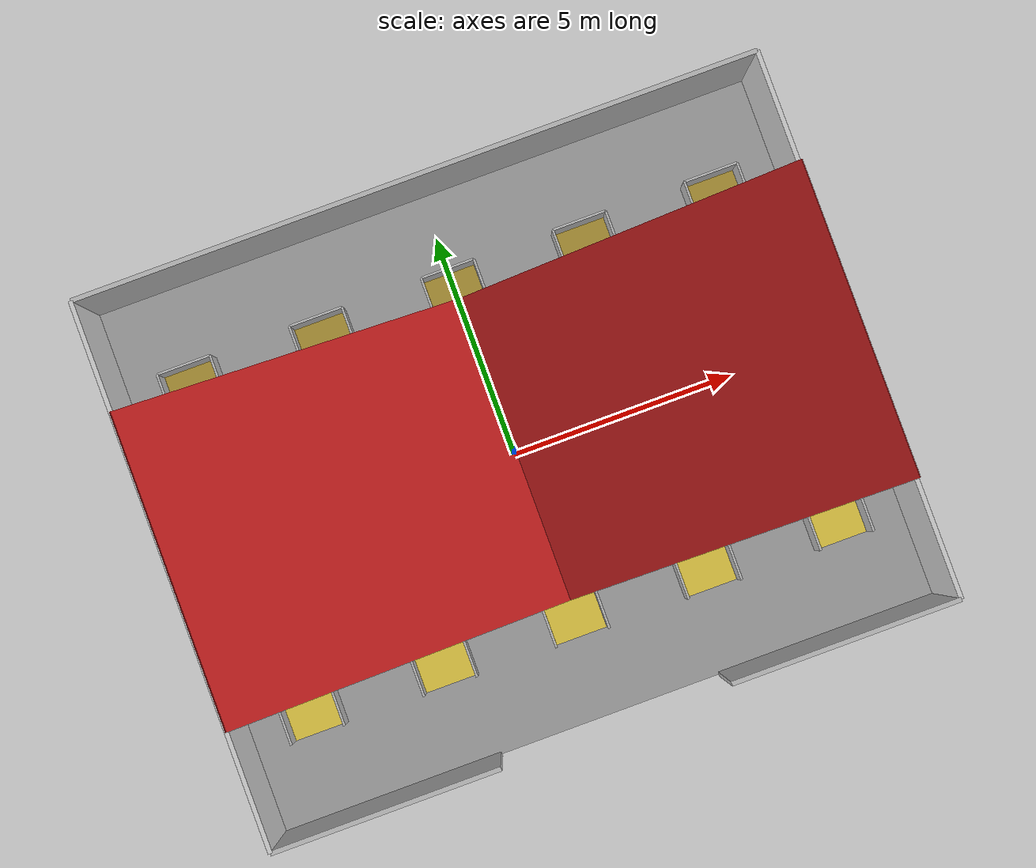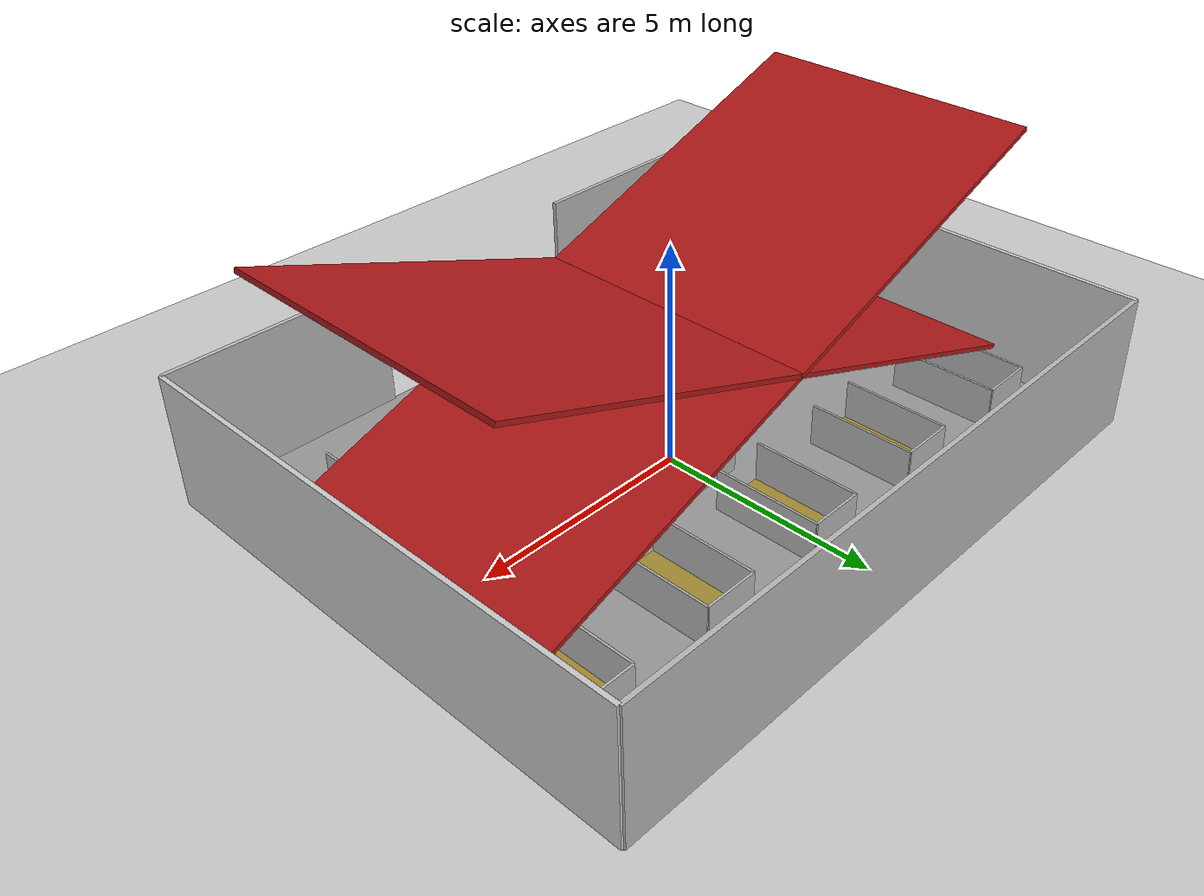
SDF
<?xml version="1.0"?>
<sdf version="1.9">
  <world name="cow_barn_world">

    <!-- Physics -->
    <physics name="default" type="dart">
      <max_step_size>0.001</max_step_size>
      <real_time_update_rate>1000</real_time_update_rate>
    </physics>

    <!-- Required so the 3D view can see the scene -->
    <plugin filename="gz-sim-scene-broadcaster-system"
            name="gz::sim::systems::SceneBroadcaster"/>

    <!-- GUI: keep the usual handy panels visible -->
    <gui fullscreen="0">
      <!-- 3D view -->
      <plugin filename="MinimalScene" name="3D View"/>
      <!-- Play / pause / step -->
      <plugin filename="WorldControl" name="World control"/>
      <!-- Sim time, real time factor, iterations -->
      <plugin filename="WorldStats" name="World stats"/>
      <!-- Hierarchy tree to inspect entities -->
      <plugin filename="EntityTree" name="Entity tree"/>
      <!-- Optional: interactive view control (orbit, FPS, etc.) -->
      <plugin filename="InteractiveViewControl" name="Interactive view control"/>
    </gui>

    <!-- Ambient + background so it’s not too dark indoors -->
    <scene>
      <ambient>0.5 0.5 0.5 1.0</ambient>
      <background>0.75 0.85 1.0 1.0</background>
    </scene>

    <!-- Sun + Ground plane from Fuel so we don’t reinvent wheels -->
    <include>
      <uri>https://fuel.gazebosim.org/1.0/OpenRobotics/models/Sun</uri>
    </include>
    <include>
      <uri>https://fuel.gazebosim.org/1.0/OpenRobotics/models/Ground Plane</uri>
      <!-- Sink the ground slightly so the barn floor sits on top -->
      <pose>0 0 -0.05 0 0 0</pose>
    </include>

    <!-- =========================
         Barn model (very simple)
         ========================= -->
    <model name="barn">
      <static>true</static>

      <!-- Barn floor: 15m x 12m concrete slab -->
      <link name="floor">
        <pose>0 0 0 0 0 0</pose>
        <collision name="floor_coll">
          <geometry>
            <box><size>15 12 0.1</size></box>
          </geometry>
          <surface>
            <friction>
              <ode>
                <mu>1.0</mu>
                <mu2>1.0</mu2>
              </ode>
            </friction>
          </surface>
        </collision>
        <visual name="floor_vis">
          <geometry>
            <box><size>15 12 0.1</size></box>
          </geometry>
          <material>
            <ambient>0.6 0.6 0.6 1</ambient>
            <diffuse>0.6 0.6 0.6 1</diffuse>
          </material>
        </visual>
      </link>

      <!-- Four simple walls (open ends for ventilation) -->
      <!-- West wall -->
      <link name="wall_w">
        <pose>-7.5 0 1.5 0 0 0</pose>
        <collision name="c">
          <geometry><box><size>0.1 12 3</size></box></geometry>
        </collision>
        <visual name="v">
          <geometry><box><size>0.1 12 3</size></box></geometry>
          <material><ambient>0.8 0.8 0.8 1</ambient></material>
        </visual>
      </link>
      <!-- East wall -->
      <link name="wall_e">
        <pose>7.5 0 1.5 0 0 0</pose>
        <collision name="c">
          <geometry><box><size>0.1 12 3</size></box></geometry>
        </collision>
        <visual name="v">
          <geometry><box><size>0.1 12 3</size></box></geometry>
          <material><ambient>0.8 0.8 0.8 1</ambient></material>
        </visual>
      </link>
      <!-- South wall with a large doorway gap (~5m) -->
      <model name="south_wall">
        <static>true</static>
        <!-- Left segment -->
        <link name="sw_left">
          <pose>-5  -6 1.5 0 0 0</pose>
          <collision name="c">
            <geometry><box><size>5 0.1 3</size></box></geometry>
          </collision>
          <visual name="v">
            <geometry><box><size>5 0.1 3</size></box></geometry>
          </visual>
        </link>
        <!-- Right segment -->
        <link name="sw_right">
          <pose> 5  -6 1.5 0 0 0</pose>
          <collision name="c">
            <geometry><box><size>5 0.1 3</size></box></geometry>
          </collision>
          <visual name="v">
            <geometry><box><size>5 0.1 3</size></box></geometry>
          </visual>
        </link>
      </model>
      <!-- North wall solid -->
      <link name="wall_n">
        <pose>0 6 1.5 0 0 0</pose>
        <collision name="c">
          <geometry><box><size>15 0.1 3</size></box></geometry>
        </collision>
        <visual name="v">
          <geometry><box><size>15 0.1 3</size></box></geometry>
        </visual>
      </link>

      <!-- Simple gable roof (two thin plates) -->
      <link name="roof_w">
        <pose>0 0 3.5 0 0.35 0</pose>
        <collision name="c">
          <geometry><box><size>15 6.5 0.1</size></box></geometry>
        </collision>
        <visual name="v">
          <geometry><box><size>15 6.5 0.1</size></box></geometry>
          <material><ambient>0.7 0.1 0.1 1</ambient></material>
        </visual>
      </link>
      <link name="roof_e">
        <pose>0 0 3.5 0 -0.35 0</pose>
        <collision name="c">
          <geometry><box><size>15 6.5 0.1</size></box></geometry>
        </collision>
        <visual name="v">
          <geometry><box><size>15 6.5 0.1</size></box></geometry>
          <material><ambient>0.7 0.1 0.1 1</ambient></material>
        </visual>
      </link>
    </model>

    <!-- =========================================
         A reusable cubicle "module"
         size ~ 1.2m x 2.4m, with side rails and bedding
         ========================================= -->
    <!-- Dry hay material (yellowish) -->
    <light name="indoor_fill" type="point">
      <pose>0 0 3.2 0 0 0</pose>
      <diffuse>0.9 0.9 0.9 1</diffuse>
      <attenuation>
        <range>20</range>
        <constant>0.9</constant>
        <linear>0.01</linear>
        <quadratic>0.001</quadratic>
      </attenuation>
    </light>

    <!-- Helper: one dry cubicle at a given pose -->
    <model name="cubicle_template_dry">
      <static>true</static>
      <pose>0 0 0 0 0 0</pose>

      <!-- bedding pad -->
      <link name="bedding">
        <pose>0 0 0.06 0 0 0</pose>
        <collision name="coll">
          <geometry><box><size>1.2 2.4 0.12</size></box></geometry>
          <surface>
            <friction>
              <ode>
                <!-- illustrative friction; tune for your use -->
                <mu>0.8</mu>
                <mu2>0.8</mu2>
              </ode>
            </friction>
          </surface>
        </collision>
        <visual name="vis">
          <geometry><box><size>1.2 2.4 0.12</size></box></geometry>
          <material>
            <ambient>0.85 0.75 0.25 1</ambient>
            <diffuse>0.85 0.75 0.25 1</diffuse>
          </material>
        </visual>
      </link>

      <!-- side rails -->
      <link name="rail_left">
        <pose>-0.6 0 0.5 0 0 0</pose>
        <collision name="c">
          <geometry><box><size>0.05 2.4 1.0</size></box></geometry>
        </collision>
        <visual name="v">
          <geometry><box><size>0.05 2.4 1.0</size></box></geometry>
        </visual>
      </link>
      <link name="rail_right">
        <pose>0.6 0 0.5 0 0 0</pose>
        <collision name="c">
          <geometry><box><size>0.05 2.4 1.0</size></box></geometry>
        </collision>
        <visual name="v">
          <geometry><box><size>0.05 2.4 1.0</size></box></geometry>
        </visual>
      </link>
      <!-- headboard -->
      <link name="rail_head">
        <pose>0 1.2 0.5 0 0 0</pose>
        <collision name="c">
          <geometry><box><size>1.2 0.05 1.0</size></box></geometry>
        </collision>
        <visual name="v">
          <geometry><box><size>1.2 0.05 1.0</size></box></geometry>
        </visual>
      </link>
    </model>

    <!-- Moist hay variant (slightly darker and (illustratively) different friction) -->
    <model name="cubicle_template_moist">
      <static>true</static>
      <pose>0 0 0 0 0 0</pose>

      <link name="bedding">
        <pose>0 0 0.06 0 0 0</pose>
        <collision name="coll">
          <geometry><box><size>1.2 2.4 0.12</size></box></geometry>
          <surface>
            <friction>
              <ode>
                <!-- illustrative friction; tune as needed -->
                <mu>0.9</mu>
                <mu2>0.9</mu2>
              </ode>
            </friction>
          </surface>
        </collision>
        <visual name="vis">
          <geometry><box><size>1.2 2.4 0.12</size></box></geometry>
          <material>
            <ambient>0.65 0.55 0.20 1</ambient>
            <diffuse>0.65 0.55 0.20 1</diffuse>
          </material>
        </visual>
      </link>

      <!-- reuse same rail geometry -->
      <link name="rail_left">
        <pose>-0.6 0 0.5 0 0 0</pose>
        <collision name="c">
          <geometry><box><size>0.05 2.4 1.0</size></box></geometry>
        </collision>
        <visual name="v">
          <geometry><box><size>0.05 2.4 1.0</size></box></geometry>
        </visual>
      </link>
      <link name="rail_right">
        <pose>0.6 0 0.5 0 0 0</pose>
        <collision name="c">
          <geometry><box><size>0.05 2.4 1.0</size></box></geometry>
        </collision>
        <visual name="v">
          <geometry><box><size>0.05 2.4 1.0</size></box></geometry>
        </visual>
      </link>
      <link name="rail_head">
        <pose>0 1.2 0.5 0 0 0</pose>
        <collision name="c">
          <geometry><box><size>1.2 0.05 1.0</size></box></geometry>
        </collision>
        <visual name="v">
          <geometry><box><size>1.2 0.05 1.0</size></box></geometry>
        </visual>
      </link>
    </model>

    <!-- =========================
         Place 10 cubicles:
         Left row (Y=-3): 5 x DRY (CLEAN)
         Right row (Y=+3): 5 x MOIST (DIRTY)
         ========================= -->
    <!-- Left row: X = -6, -3, 0, 3, 6 -->
    <model name="cubicle_dry_1"><static>true</static><pose>-6 -3 0 0 0 0</pose>  <!-- copy of template -->
      <link name="bedding"><pose>0 0 0.06 0 0 0</pose><collision name="c"><geometry><box><size>1.2 2.4 0.12</size></box></geometry><surface><friction><ode><mu>0.8</mu><mu2>0.8</mu2></ode></friction></surface></collision><visual name="v"><geometry><box><size>1.2 2.4 0.12</size></box></geometry><material><ambient>0.85 0.75 0.25 1</ambient><diffuse>0.85 0.75 0.25 1</diffuse></material></visual></link>
      <link name="rail_left"><pose>-0.6 0 0.5 0 0 0</pose><collision name="c"><geometry><box><size>0.05 2.4 1.0</size></box></geometry></collision><visual name="v"><geometry><box><size>0.05 2.4 1.0</size></box></geometry></visual></link>
      <link name="rail_right"><pose>0.6 0 0.5 0 0 0</pose><collision name="c"><geometry><box><size>0.05 2.4 1.0</size></box></geometry></collision><visual name="v"><geometry><box><size>0.05 2.4 1.0</size></box></geometry></visual></link>
      <link name="rail_head"><pose>0 1.2 0.5 0 0 0</pose><collision name="c"><geometry><box><size>1.2 0.05 1.0</size></box></geometry></collision><visual name="v"><geometry><box><size>1.2 0.05 1.0</size></box></geometry></visual></link>
    </model>
    <model name="cubicle_dry_2"><static>true</static><pose>-3 -3 0 0 0 0</pose>  <!-- identical geometry -->
      <link name="bedding"><pose>0 0 0.06 0 0 0</pose><collision name="c"><geometry><box><size>1.2 2.4 0.12</size></box></geometry><surface><friction><ode><mu>0.8</mu><mu2>0.8</mu2></ode></friction></surface></collision><visual name="v"><geometry><box><size>1.2 2.4 0.12</size></box></geometry><material><ambient>0.85 0.75 0.25 1</ambient><diffuse>0.85 0.75 0.25 1</diffuse></material></visual></link>
      <link name="rail_left"><pose>-0.6 0 0.5 0 0 0</pose><collision name="c"><geometry><box><size>0.05 2.4 1.0</size></box></geometry></collision><visual name="v"><geometry><box><size>0.05 2.4 1.0</size></box></geometry></visual></link>
      <link name="rail_right"><pose>0.6 0 0.5 0 0 0</pose><collision name="c"><geometry><box><size>0.05 2.4 1.0</size></box></geometry></collision><visual name="v"><geometry><box><size>0.05 2.4 1.0</size></box></geometry></visual></link>
      <link name="rail_head"><pose>0 1.2 0.5 0 0 0</pose><collision name="c"><geometry><box><size>1.2 0.05 1.0</size></box></geometry></collision><visual name="v"><geometry><box><size>1.2 0.05 1.0</size></box></geometry></visual></link>
    </model>
    <model name="cubicle_dry_3"><static>true</static><pose>0 -3 0 0 0 0</pose>   <!-- same -->
      <link name="bedding"><pose>0 0 0.06 0 0 0</pose><collision name="c"><geometry><box><size>1.2 2.4 0.12</size></box></geometry><surface><friction><ode><mu>0.8</mu><mu2>0.8</mu2></ode></friction></surface></collision><visual name="v"><geometry><box><size>1.2 2.4 0.12</size></box></geometry><material><ambient>0.85 0.75 0.25 1</ambient><diffuse>0.85 0.75 0.25 1</diffuse></material></visual></link>
      <link name="rail_left"><pose>-0.6 0 0.5 0 0 0</pose><collision name="c"><geometry><box><size>0.05 2.4 1.0</size></box></geometry></collision><visual name="v"><geometry><box><size>0.05 2.4 1.0</size></box></geometry></visual></link>
      <link name="rail_right"><pose>0.6 0 0.5 0 0 0</pose><collision name="c"><geometry><box><size>0.05 2.4 1.0</size></box></geometry></collision><visual name="v"><geometry><box><size>0.05 2.4 1.0</size></box></geometry></visual></link>
      <link name="rail_head"><pose>0 1.2 0.5 0 0 0</pose><collision name="c"><geometry><box><size>1.2 0.05 1.0</size></box></geometry></collision><visual name="v"><geometry><box><size>1.2 0.05 1.0</size></box></geometry></visual></link>
    </model>
    <model name="cubicle_dry_4"><static>true</static><pose>3 -3 0 0 0 0</pose>   <!-- same -->
      <link name="bedding"><pose>0 0 0.06 0 0 0</pose><collision name="c"><geometry><box><size>1.2 2.4 0.12</size></box></geometry><surface><friction><ode><mu>0.8</mu><mu2>0.8</mu2></ode></friction></surface></collision><visual name="v"><geometry><box><size>1.2 2.4 0.12</size></box></geometry><material><ambient>0.85 0.75 0.25 1</ambient><diffuse>0.85 0.75 0.25 1</diffuse></material></visual></link>
      <link name="rail_left"><pose>-0.6 0 0.5 0 0 0</pose><collision name="c"><geometry><box><size>0.05 2.4 1.0</size></box></geometry></collision><visual name="v"><geometry><box><size>0.05 2.4 1.0</size></box></geometry></visual></link>
      <link name="rail_right"><pose>0.6 0 0.5 0 0 0</pose><collision name="c"><geometry><box><size>0.05 2.4 1.0</size></box></geometry></collision><visual name="v"><geometry><box><size>0.05 2.4 1.0</size></box></geometry></visual></link>
      <link name="rail_head"><pose>0 1.2 0.5 0 0 0</pose><collision name="c"><geometry><box><size>1.2 0.05 1.0</size></box></geometry></collision><visual name="v"><geometry><box><size>1.2 0.05 1.0</size></box></geometry></visual></link>
    </model>
    <model name="cubicle_dry_5"><static>true</static><pose>6 -3 0 0 0 0</pose>   <!-- same -->
      <link name="bedding"><pose>0 0 0.06 0 0 0</pose><collision name="c"><geometry><box><size>1.2 2.4 0.12</size></box></geometry><surface><friction><ode><mu>0.8</mu><mu2>0.8</mu2></ode></friction></surface></collision><visual name="v"><geometry><box><size>1.2 2.4 0.12</size></box></geometry><material><ambient>0.85 0.75 0.25 1</ambient><diffuse>0.85 0.75 0.25 1</diffuse></material></visual></link>
      <link name="rail_left"><pose>-0.6 0 0.5 0 0 0</pose><collision name="c"><geometry><box><size>0.05 2.4 1.0</size></box></geometry></collision><visual name="v"><geometry><box><size>0.05 2.4 1.0</size></box></geometry></visual></link>
      <link name="rail_right"><pose>0.6 0 0.5 0 0 0</pose><collision name="c"><geometry><box><size>0.05 2.4 1.0</size></box></geometry></collision><visual name="v"><geometry><box><size>0.05 2.4 1.0</size></box></geometry></visual></link>
      <link name="rail_head"><pose>0 1.2 0.5 0 0 0</pose><collision name="c"><geometry><box><size>1.2 0.05 1.0</size></box></geometry></collision><visual name="v"><geometry><box><size>1.2 0.05 1.0</size></box></geometry></visual></link>
    </model>

    <!-- Right row (moist) -->
    <model name="cubicle_moist_1"><static>true</static><pose>-6 3 0 0 0 0</pose>
      <link name="bedding"><pose>0 0 0.06 0 0 0</pose><collision name="c"><geometry><box><size>1.2 2.4 0.12</size></box></geometry><surface><friction><ode><mu>0.9</mu><mu2>0.9</mu2></ode></friction></surface></collision><visual name="v"><geometry><box><size>1.2 2.4 0.12</size></box></geometry><material><ambient>0.65 0.55 0.20 1</ambient><diffuse>0.65 0.55 0.20 1</diffuse></material></visual></link>
      <link name="rail_left"><pose>-0.6 0 0.5 0 0 0</pose><collision name="c"><geometry><box><size>0.05 2.4 1.0</size></box></geometry></collision><visual name="v"><geometry><box><size>0.05 2.4 1.0</size></box></geometry></visual></link>
      <link name="rail_right"><pose>0.6 0 0.5 0 0 0</pose><collision name="c"><geometry><box><size>0.05 2.4 1.0</size></box></geometry></collision><visual name="v"><geometry><box><size>0.05 2.4 1.0</size></box></geometry></visual></link>
      <link name="rail_head"><pose>0 1.2 0.5 0 0 0</pose><collision name="c"><geometry><box><size>1.2 0.05 1.0</size></box></geometry></collision><visual name="v"><geometry><box><size>1.2 0.05 1.0</size></box></geometry></visual></link>
    </model>
    <model name="cubicle_moist_2"><static>true</static><pose>-3 3 0 0 0 0</pose>   <!-- same geometry -->
      <link name="bedding"><pose>0 0 0.06 0 0 0</pose><collision name="c"><geometry><box><size>1.2 2.4 0.12</size></box></geometry><surface><friction><ode><mu>0.9</mu><mu2>0.9</mu2></ode></friction></surface></collision><visual name="v"><geometry><box><size>1.2 2.4 0.12</size></box></geometry><material><ambient>0.65 0.55 0.20 1</ambient><diffuse>0.65 0.55 0.20 1</diffuse></material></visual></link>
      <link name="rail_left"><pose>-0.6 0 0.5 0 0 0</pose><collision name="c"><geometry><box><size>0.05 2.4 1.0</size></box></geometry></collision><visual name="v"><geometry><box><size>0.05 2.4 1.0</size></box></geometry></visual></link>
      <link name="rail_right"><pose>0.6 0 0.5 0 0 0</pose><collision name="c"><geometry><box><size>0.05 2.4 1.0</size></box></geometry></collision><visual name="v"><geometry><box><size>0.05 2.4 1.0</size></box></geometry></visual></link>
      <link name="rail_head"><pose>0 1.2 0.5 0 0 0</pose><collision name="c"><geometry><box><size>1.2 0.05 1.0</size></box></geometry></collision><visual name="v"><geometry><box><size>1.2 0.05 1.0</size></box></geometry></visual></link>
    </model>
    <model name="cubicle_moist_3"><static>true</static><pose>0 3 0 0 0 0</pose>    <!-- same -->
      <link name="bedding"><pose>0 0 0.06 0 0 0</pose><collision name="c"><geometry><box><size>1.2 2.4 0.12</size></box></geometry><surface><friction><ode><mu>0.9</mu><mu2>0.9</mu2></ode></friction></surface></collision><visual name="v"><geometry><box><size>1.2 2.4 0.12</size></box></geometry><material><ambient>0.65 0.55 0.20 1</ambient><diffuse>0.65 0.55 0.20 1</diffuse></material></visual></link>
      <link name="rail_left"><pose>-0.6 0 0.5 0 0 0</pose><collision name="c"><geometry><box><size>0.05 2.4 1.0</size></box></geometry></collision><visual name="v"><geometry><box><size>0.05 2.4 1.0</size></box></geometry></visual></link>
      <link name="rail_right"><pose>0.6 0 0.5 0 0 0</pose><collision name="c"><geometry><box><size>0.05 2.4 1.0</size></box></geometry></collision><visual name="v"><geometry><box><size>0.05 2.4 1.0</size></box></geometry></visual></link>
      <link name="rail_head"><pose>0 1.2 0.5 0 0 0</pose><collision name="c"><geometry><box><size>1.2 0.05 1.0</size></box></geometry></collision><visual name="v"><geometry><box><size>1.2 0.05 1.0</size></box></geometry></visual></link>
    </model>
    <model name="cubicle_moist_4"><static>true</static><pose>3 3 0 0 0 0</pose>    <!-- same -->
      <link name="bedding"><pose>0 0 0.06 0 0 0</pose><collision name="c"><geometry><box><size>1.2 2.4 0.12</size></box></geometry><surface><friction><ode><mu>0.9</mu><mu2>0.9</mu2></ode></friction></surface></collision><visual name="v"><geometry><box><size>1.2 2.4 0.12</size></box></geometry><material><ambient>0.65 0.55 0.20 1</ambient><diffuse>0.65 0.55 0.20 1</diffuse></material></visual></link>
      <link name="rail_left"><pose>-0.6 0 0.5 0 0 0</pose><collision name="c"><geometry><box><size>0.05 2.4 1.0</size></box></geometry></collision><visual name="v"><geometry><box><size>0.05 2.4 1.0</size></box></geometry></visual></link>
      <link name="rail_right"><pose>0.6 0 0.5 0 0 0</pose><collision name="c"><geometry><box><size>0.05 2.4 1.0</size></box></geometry></collision><visual name="v"><geometry><box><size>0.05 2.4 1.0</size></box></geometry></visual></link>
      <link name="rail_head"><pose>0 1.2 0.5 0 0 0</pose><collision name="c"><geometry><box><size>1.2 0.05 1.0</size></box></geometry></collision><visual name="v"><geometry><box><size>1.2 0.05 1.0</size></box></geometry></visual></link>
    </model>
    <model name="cubicle_moist_5"><static>true</static><pose>6 3 0 0 0 0</pose>    <!-- same -->
      <link name="bedding"><pose>0 0 0.06 0 0 0</pose><collision name="c"><geometry><box><size>1.2 2.4 0.12</size></box></geometry><surface><friction><ode><mu>0.9</mu><mu2>0.9</mu2></ode></friction></surface></collision><visual name="v"><geometry><box><size>1.2 2.4 0.12</size></box></geometry><material><ambient>0.65 0.55 0.20 1</ambient><diffuse>0.65 0.55 0.20 1</diffuse></material></visual></link>
      <link name="rail_left"><pose>-0.6 0 0.5 0 0 0</pose><collision name="c"><geometry><box><size>0.05 2.4 1.0</size></box></geometry></collision><visual name="v"><geometry><box><size>0.05 2.4 1.0</size></box></geometry></visual></link>
      <link name="rail_right"><pose>0.6 0 0.5 0 0 0</pose><collision name="c"><geometry><box><size>0.05 2.4 1.0</size></box></geometry></collision><visual name="v"><geometry><box><size>0.05 2.4 1.0</size></box></geometry></visual></link>
      <link name="rail_head"><pose>0 1.2 0.5 0 0 0</pose><collision name="c"><geometry><box><size>1.2 0.05 1.0</size></box></geometry></collision><visual name="v"><geometry><box><size>1.2 0.05 1.0</size></box></geometry></visual></link>
    </model>

  </world>
</sdf>
